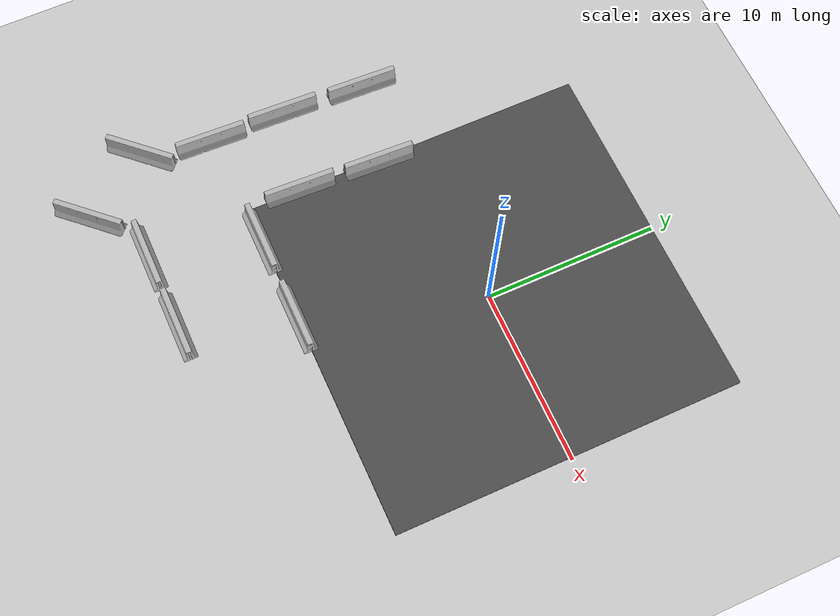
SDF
<sdf version="1.6">
 <world name="default">
  <model name="ground_plane">
   <static>1</static>
   <link name="link">
    <collision name="collision">
     <geometry><plane><normal>0 0 1</normal><size>100 100</size></plane></geometry>
     <surface><friction><ode><mu>100</mu><mu2>50</mu2></ode></friction></surface>
    </collision>
    <visual name="visual">
     <cast_shadows>0</cast_shadows>
     <geometry><plane><normal>0 0 1</normal><size>100 100</size></plane></geometry>
     <material>
      <script><uri>file://media/materials/scripts/gazebo.material</uri><name>Gazebo/Grey</name></script>
     </material>
    </visual>
    <velocity_decay><linear>0</linear><angular>0</angular></velocity_decay>
   </link>
  </model>
  <model name="jersey_barrier">
   <static>1</static>
   <link name="link">
    <visual name="visual">
     <geometry><mesh><uri>model://jersey_barrier/meshes/jersey_barrier.dae</uri></mesh></geometry>
    </visual>
    <collision name="upright">
     <pose>0 0 0.5715 0 -0 0</pose>
     <geometry><box><size>4.06542 0.3063 1.143</size></box></geometry>
    </collision>
    <collision name="base">
     <pose>0 0 0.032258 0 -0 0</pose>
     <geometry><box><size>4.06542 0.8107 0.064516</size></box></geometry>
    </collision>
    <collision name="base2">
     <pose>0 0 0.1 0 -0 0</pose>
     <geometry><box><size>4.06542 0.65 0.1</size></box></geometry>
    </collision>
    <collision name="base3">
     <pose>0 0 0.2 0 -0 0</pose>
     <geometry><box><size>4.06542 0.5 0.1</size></box></geometry>
    </collision>
    <collision name="left-angle">
     <pose>0 -0.224 0.2401 0.9 -0 0</pose>
     <geometry><box><size>4.06542 0.5 0.064516</size></box></geometry>
    </collision>
    <collision name="right-angle">
     <pose>0 0.224 0.2401 -0.9 0 0</pose>
     <geometry><box><size>4.06542 0.5 0.064516</size></box></geometry>
    </collision>
    <velocity_decay><linear>0</linear><angular>0</angular></velocity_decay>
   </link>
   <pose>-8 -10 0 0 -0 0</pose>
  </model>
  <model name="jersey_barrier_0">
   <static>1</static>
   <link name="link">
    <visual name="visual">
     <geometry><mesh><uri>model://jersey_barrier/meshes/jersey_barrier.dae</uri></mesh></geometry>
    </visual>
    <collision name="upright">
     <pose>0 0 0.5715 0 -0 0</pose>
     <geometry><box><size>4.06542 0.3063 1.143</size></box></geometry>
    </collision>
    <collision name="base">
     <pose>0 0 0.032258 0 -0 0</pose>
     <geometry><box><size>4.06542 0.8107 0.064516</size></box></geometry>
    </collision>
    <collision name="base2">
     <pose>0 0 0.1 0 -0 0</pose>
     <geometry><box><size>4.06542 0.65 0.1</size></box></geometry>
    </collision>
    <collision name="base3">
     <pose>0 0 0.2 0 -0 0</pose>
     <geometry><box><size>4.06542 0.5 0.1</size></box></geometry>
    </collision>
    <collision name="left-angle">
     <pose>0 -0.224 0.2401 0.9 -0 0</pose>
     <geometry><box><size>4.06542 0.5 0.064516</size></box></geometry>
    </collision>
    <collision name="right-angle">
     <pose>0 0.224 0.2401 -0.9 0 0</pose>
     <geometry><box><size>4.06542 0.5 0.064516</size></box></geometry>
    </collision>
    <velocity_decay><linear>0</linear><angular>0</angular></velocity_decay>
   </link>
   <pose>-3 -10 0 0 -0 0</pose>
  </model>
  <model name="asphalt_plane">
   <static>1</static>
   <link name="link">
    <collision name="collision"><geometry><box><size>20 20 0.1</size></box></geometry></collision>
    <visual name="visual">
     <cast_shadows>0</cast_shadows>
     <geometry><box><size>20 20 0.1</size></box></geometry>
     <material>
      <script>
       <uri>model://asphalt_plane/materials/scripts</uri>
       <uri>model://asphalt_plane/materials/textures</uri>
       <name>vrc/asphalt</name>
      </script>
     </material>
    </visual>
    <velocity_decay><linear>0</linear><angular>0</angular></velocity_decay>
   </link>
   <pose>-0.123803 0.022176 0 0 -0 0</pose>
  </model>
  <model name="jersey_barrier_7_clone_1_clone_0">
   <static>1</static>
   <link name="link">
    <visual name="visual">
     <geometry><mesh><uri>model://jersey_barrier/meshes/jersey_barrier.dae</uri></mesh></geometry>
    </visual>
    <collision name="upright">
     <pose>0 0 0.5715 0 -0 0</pose>
     <geometry><box><size>4.06542 0.3063 1.143</size></box></geometry>
    </collision>
    <collision name="base">
     <pose>0 0 0.032258 0 -0 0</pose>
     <geometry><box><size>4.06542 0.8107 0.064516</size></box></geometry>
    </collision>
    <collision name="base2">
     <pose>0 0 0.1 0 -0 0</pose>
     <geometry><box><size>4.06542 0.65 0.1</size></box></geometry>
    </collision>
    <collision name="base3">
     <pose>0 0 0.2 0 -0 0</pose>
     <geometry><box><size>4.06542 0.5 0.1</size></box></geometry>
    </collision>
    <collision name="left-angle">
     <pose>0 -0.224 0.2401 0.9 -0 0</pose>
     <geometry><box><size>4.06542 0.5 0.064516</size></box></geometry>
    </collision>
    <collision name="right-angle">
     <pose>0 0.224 0.2401 -0.9 0 0</pose>
     <geometry><box><size>4.06542 0.5 0.064516</size></box></geometry>
    </collision>
   </link>
   <pose>-10.0917 -6.86582 0 0 -0 1.5316</pose>
  </model>
  <model name="jersey_barrier_7_clone_1_clone_3">
   <static>1</static>
   <link name="link">
    <visual name="visual">
     <geometry><mesh><uri>model://jersey_barrier/meshes/jersey_barrier.dae</uri></mesh></geometry>
    </visual>
    <collision name="upright">
     <pose>0 0 0.5715 0 -0 0</pose>
     <geometry><box><size>4.06542 0.3063 1.143</size></box></geometry>
    </collision>
    <collision name="base">
     <pose>0 0 0.032258 0 -0 0</pose>
     <geometry><box><size>4.06542 0.8107 0.064516</size></box></geometry>
    </collision>
    <collision name="base2">
     <pose>0 0 0.1 0 -0 0</pose>
     <geometry><box><size>4.06542 0.65 0.1</size></box></geometry>
    </collision>
    <collision name="base3">
     <pose>0 0 0.2 0 -0 0</pose>
     <geometry><box><size>4.06542 0.5 0.1</size></box></geometry>
    </collision>
    <collision name="left-angle">
     <pose>0 -0.224 0.2401 0.9 -0 0</pose>
     <geometry><box><size>4.06542 0.5 0.064516</size></box></geometry>
    </collision>
    <collision name="right-angle">
     <pose>0 0.224 0.2401 -0.9 0 0</pose>
     <geometry><box><size>4.06542 0.5 0.064516</size></box></geometry>
    </collision>
   </link>
   <pose>-14.7486 -1.06823 0 0 -0 1.5316</pose>
  </model>
  <model name="jersey_barrier_7_clone_1_clone_4">
   <static>1</static>
   <link name="link">
    <visual name="visual">
     <geometry><mesh><uri>model://jersey_barrier/meshes/jersey_barrier.dae</uri></mesh></geometry>
    </visual>
    <collision name="upright">
     <pose>0 0 0.5715 0 -0 0</pose>
     <geometry><box><size>4.06542 0.3063 1.143</size></box></geometry>
    </collision>
    <collision name="base">
     <pose>0 0 0.032258 0 -0 0</pose>
     <geometry><box><size>4.06542 0.8107 0.064516</size></box></geometry>
    </collision>
    <collision name="base2">
     <pose>0 0 0.1 0 -0 0</pose>
     <geometry><box><size>4.06542 0.65 0.1</size></box></geometry>
    </collision>
    <collision name="base3">
     <pose>0 0 0.2 0 -0 0</pose>
     <geometry><box><size>4.06542 0.5 0.1</size></box></geometry>
    </collision>
    <collision name="left-angle">
     <pose>0 -0.224 0.2401 0.9 -0 0</pose>
     <geometry><box><size>4.06542 0.5 0.064516</size></box></geometry>
    </collision>
    <collision name="right-angle">
     <pose>0 0.224 0.2401 -0.9 0 0</pose>
     <geometry><box><size>4.06542 0.5 0.064516</size></box></geometry>
    </collision>
   </link>
   <pose>-14.9922 -5.87235 0 0 -0 1.5316</pose>
  </model>
  <model name="jersey_barrier_7_clone_1_clone_5">
   <static>1</static>
   <link name="link">
    <visual name="visual">
     <geometry><mesh><uri>model://jersey_barrier/meshes/jersey_barrier.dae</uri></mesh></geometry>
    </visual>
    <collision name="upright">
     <pose>0 0 0.5715 0 -0 0</pose>
     <geometry><box><size>4.06542 0.3063 1.143</size></box></geometry>
    </collision>
    <collision name="base">
     <pose>0 0 0.032258 0 -0 0</pose>
     <geometry><box><size>4.06542 0.8107 0.064516</size></box></geometry>
    </collision>
    <collision name="base2">
     <pose>0 0 0.1 0 -0 0</pose>
     <geometry><box><size>4.06542 0.65 0.1</size></box></geometry>
    </collision>
    <collision name="base3">
     <pose>0 0 0.2 0 -0 0</pose>
     <geometry><box><size>4.06542 0.5 0.1</size></box></geometry>
    </collision>
    <collision name="left-angle">
     <pose>0 -0.224 0.2401 0.9 -0 0</pose>
     <geometry><box><size>4.06542 0.5 0.064516</size></box></geometry>
    </collision>
    <collision name="right-angle">
     <pose>0 0.224 0.2401 -0.9 0 0</pose>
     <geometry><box><size>4.06542 0.5 0.064516</size></box></geometry>
    </collision>
   </link>
   <pose>-14.959 -10.2795 0 0 -0 1.5316</pose>
  </model>
  <model name="jersey_barrier_clone">
   <static>1</static>
   <link name="link">
    <visual name="visual">
     <geometry><mesh><uri>model://jersey_barrier/meshes/jersey_barrier.dae</uri></mesh></geometry>
    </visual>
    <collision name="upright">
     <pose>0 0 0.5715 0 -0 0</pose>
     <geometry><box><size>4.06542 0.3063 1.143</size></box></geometry>
    </collision>
    <collision name="base">
     <pose>0 0 0.032258 0 -0 0</pose>
     <geometry><box><size>4.06542 0.8107 0.064516</size></box></geometry>
    </collision>
    <collision name="base2">
     <pose>0 0 0.1 0 -0 0</pose>
     <geometry><box><size>4.06542 0.65 0.1</size></box></geometry>
    </collision>
    <collision name="base3">
     <pose>0 0 0.2 0 -0 0</pose>
     <geometry><box><size>4.06542 0.5 0.1</size></box></geometry>
    </collision>
    <collision name="left-angle">
     <pose>0 -0.224 0.2401 0.9 -0 0</pose>
     <geometry><box><size>4.06542 0.5 0.064516</size></box></geometry>
    </collision>
    <collision name="right-angle">
     <pose>0 0.224 0.2401 -0.9 0 0</pose>
     <geometry><box><size>4.06542 0.5 0.064516</size></box></geometry>
    </collision>
    <velocity_decay><linear>0</linear><angular>0</angular></velocity_decay>
   </link>
   <pose>-9.60671 -16.051 0 0 -0 0</pose>
  </model>
  <model name="jersey_barrier_clone_0">
   <static>1</static>
   <link name="link">
    <visual name="visual">
     <geometry><mesh><uri>model://jersey_barrier/meshes/jersey_barrier.dae</uri></mesh></geometry>
    </visual>
    <collision name="upright">
     <pose>0 0 0.5715 0 -0 0</pose>
     <geometry><box><size>4.06542 0.3063 1.143</size></box></geometry>
    </collision>
    <collision name="base">
     <pose>0 0 0.032258 0 -0 0</pose>
     <geometry><box><size>4.06542 0.8107 0.064516</size></box></geometry>
    </collision>
    <collision name="base2">
     <pose>0 0 0.1 0 -0 0</pose>
     <geometry><box><size>4.06542 0.65 0.1</size></box></geometry>
    </collision>
    <collision name="base3">
     <pose>0 0 0.2 0 -0 0</pose>
     <geometry><box><size>4.06542 0.5 0.1</size></box></geometry>
    </collision>
    <collision name="left-angle">
     <pose>0 -0.224 0.2401 0.9 -0 0</pose>
     <geometry><box><size>4.06542 0.5 0.064516</size></box></geometry>
    </collision>
    <collision name="right-angle">
     <pose>0 0.224 0.2401 -0.9 0 0</pose>
     <geometry><box><size>4.06542 0.5 0.064516</size></box></geometry>
    </collision>
    <velocity_decay><linear>0</linear><angular>0</angular></velocity_decay>
   </link>
   <pose>-5.17894 -16.0195 0 0 -0 0</pose>
  </model>
  <model name="jersey_barrier_clone_4_clone_2">
   <static>1</static>
   <link name="link">
    <visual name="visual">
     <geometry><mesh><uri>model://jersey_barrier/meshes/jersey_barrier.dae</uri></mesh></geometry>
    </visual>
    <collision name="upright">
     <pose>0 0 0.5715 0 -0 0</pose>
     <geometry><box><size>4.06542 0.3063 1.143</size></box></geometry>
    </collision>
    <collision name="base">
     <pose>0 0 0.032258 0 -0 0</pose>
     <geometry><box><size>4.06542 0.8107 0.064516</size></box></geometry>
    </collision>
    <collision name="base2">
     <pose>0 0 0.1 0 -0 0</pose>
     <geometry><box><size>4.06542 0.65 0.1</size></box></geometry>
    </collision>
    <collision name="base3">
     <pose>0 0 0.2 0 -0 0</pose>
     <geometry><box><size>4.06542 0.5 0.1</size></box></geometry>
    </collision>
    <collision name="left-angle">
     <pose>0 -0.224 0.2401 0.9 -0 0</pose>
     <geometry><box><size>4.06542 0.5 0.064516</size></box></geometry>
    </collision>
    <collision name="right-angle">
     <pose>0 0.224 0.2401 -0.9 0 0</pose>
     <geometry><box><size>4.06542 0.5 0.064516</size></box></geometry>
    </collision>
    <velocity_decay><linear>0</linear><angular>0</angular></velocity_decay>
   </link>
   <pose>-15.8045 -14.1655 0 0 -0 0.826051</pose>
  </model>
  <model name="jersey_barrier_clone_4_clone_2_clone">
   <static>1</static>
   <link name="link">
    <visual name="visual">
     <geometry><mesh><uri>model://jersey_barrier/meshes/jersey_barrier.dae</uri></mesh></geometry>
    </visual>
    <collision name="upright">
     <pose>0 0 0.5715 0 -0 0</pose>
     <geometry><box><size>4.06542 0.3063 1.143</size></box></geometry>
    </collision>
    <collision name="base">
     <pose>0 0 0.032258 0 -0 0</pose>
     <geometry><box><size>4.06542 0.8107 0.064516</size></box></geometry>
    </collision>
    <collision name="base2">
     <pose>0 0 0.1 0 -0 0</pose>
     <geometry><box><size>4.06542 0.65 0.1</size></box></geometry>
    </collision>
    <collision name="base3">
     <pose>0 0 0.2 0 -0 0</pose>
     <geometry><box><size>4.06542 0.5 0.1</size></box></geometry>
    </collision>
    <collision name="left-angle">
     <pose>0 -0.224 0.2401 0.9 -0 0</pose>
     <geometry><box><size>4.06542 0.5 0.064516</size></box></geometry>
    </collision>
    <collision name="right-angle">
     <pose>0 0.224 0.2401 -0.9 0 0</pose>
     <geometry><box><size>4.06542 0.5 0.064516</size></box></geometry>
    </collision>
    <velocity_decay><linear>0</linear><angular>0</angular></velocity_decay>
   </link>
   <pose>-13.1592 -18.1667 0 0 -0 0.826051</pose>
  </model>
  <model name="jersey_barrier_7_clone_1_clone_clone_0">
   <static>1</static>
   <link name="link">
    <visual name="visual">
     <geometry><mesh><uri>model://jersey_barrier/meshes/jersey_barrier.dae</uri></mesh></geometry>
    </visual>
    <collision name="upright">
     <pose>0 0 0.5715 0 -0 0</pose>
     <geometry><box><size>4.06542 0.3063 1.143</size></box></geometry>
    </collision>
    <collision name="base">
     <pose>0 0 0.032258 0 -0 0</pose>
     <geometry><box><size>4.06542 0.8107 0.064516</size></box></geometry>
    </collision>
    <collision name="base2">
     <pose>0 0 0.1 0 -0 0</pose>
     <geometry><box><size>4.06542 0.65 0.1</size></box></geometry>
    </collision>
    <collision name="base3">
     <pose>0 0 0.2 0 -0 0</pose>
     <geometry><box><size>4.06542 0.5 0.1</size></box></geometry>
    </collision>
    <collision name="left-angle">
     <pose>0 -0.224 0.2401 0.9 -0 0</pose>
     <geometry><box><size>4.06542 0.5 0.064516</size></box></geometry>
    </collision>
    <collision name="right-angle">
     <pose>0 0.224 0.2401 -0.9 0 0</pose>
     <geometry><box><size>4.06542 0.5 0.064516</size></box></geometry>
    </collision>
   </link>
   <pose>-9.8719 -2.13548 0 0 -0 1.5316</pose>
  </model>
 </world>
</sdf>
